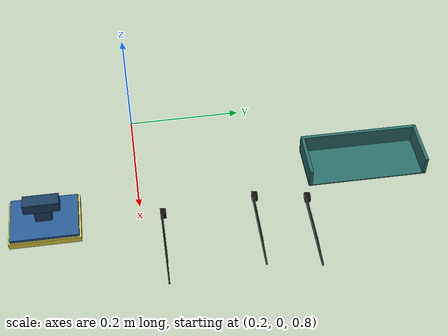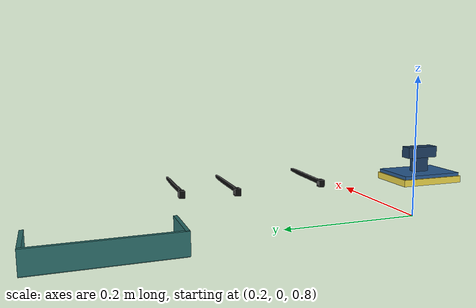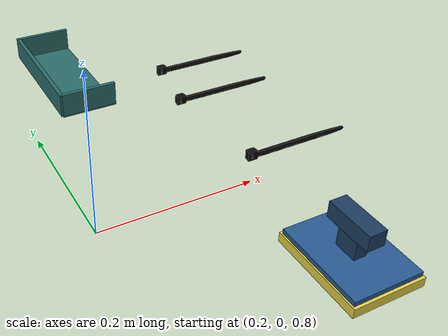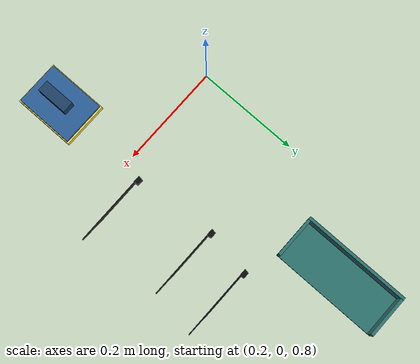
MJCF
<?xml version="1.0" encoding="utf-8"?>
<mujoco>
  <asset>
    <mesh name="cleanup_cable_tie" file="meshes/essentra_461182_cable_tie_150mm.stl" scale="0.001 0.001 0.001" />
    <material name="cleanup_foam" rgba="0.92 0.83 0.28 1" />
    <material name="cleanup_backing" rgba="0.16 0.36 0.58 1" />
    <material name="cleanup_handle" rgba="0.11 0.24 0.38 1" />
    <material name="cleanup_tie_material" rgba="0.04 0.04 0.04 1" />
    <material name="cleanup_tray_material" rgba="0.17 0.43 0.42 1" />
  </asset>
  <worldbody>
    <!-- The table top is z=0.800. The soft contact response approximates a sponge pad,
         but does not model its internal deformation. The rigid handle is grasped along X. -->
    <body name="cleanup_sponge" pos="0.415 -0.160 0.806">
      <freejoint name="fj_sponge" />
      <inertial pos="0 0 0.014" mass="0.090" diaginertia="0.00007 0.00010 0.00012" />
      <geom name="cleanup_sponge_pad" type="box" size="0.045 0.060 0.006" material="cleanup_foam" friction="1.3 0.03 0.001" solref="0.025 1" solimp="0.85 0.97 0.001" contype="1" conaffinity="1023" />
      <geom name="cleanup_sponge_backing" type="box" pos="0 0 0.009" size="0.043 0.057 0.003" material="cleanup_backing" contype="1" conaffinity="1023" />
      <geom name="cleanup_sponge_stem" type="box" pos="0 0 0.032" size="0.008 0.014 0.020" material="cleanup_handle" contype="1" conaffinity="1023" />
      <geom name="cleanup_sponge_handle" type="box" pos="0 0 0.048" size="0.011 0.030 0.010" material="cleanup_handle" friction="1.8 0.03 0.001" contype="1" conaffinity="1023" />
      <site name="sponge_grasp" pos="0 0 0.048" size="0.003" rgba="0 0 0 0" />
      <site name="sponge_contact" pos="0 0 -0.006" size="0.003" rgba="0 0 0 0" />
    </body>

    <!-- Three rigid 150 mm Essentra 461182 cable ties. -->
    <body name="cleanup_tie_0" pos="0.575000 0.035 0.807">
      <freejoint name="fj_tie_0" />
      <inertial pos="-0.075 0 0" mass="0.003" diaginertia="0.0000001 0.000006 0.000006" />
      <geom name="cleanup_tie_0_geom" type="mesh" mesh="cleanup_cable_tie" material="cleanup_tie_material" friction="0.65 0.005 0.0001" contype="1" conaffinity="1023" />
    </body>
    <body name="cleanup_tie_1" pos="0.560000 0.195 0.807">
      <freejoint name="fj_tie_1" />
      <inertial pos="-0.075 0 0" mass="0.003" diaginertia="0.0000001 0.000006 0.000006" />
      <geom name="cleanup_tie_1_geom" type="mesh" mesh="cleanup_cable_tie" material="cleanup_tie_material" friction="0.65 0.005 0.0001" contype="1" conaffinity="1023" />
    </body>
    <body name="cleanup_tie_2" pos="0.575000 0.285 0.807">
      <freejoint name="fj_tie_2" />
      <inertial pos="-0.075 0 0" mass="0.003" diaginertia="0.0000001 0.000006 0.000006" />
      <geom name="cleanup_tie_2_geom" type="mesh" mesh="cleanup_cable_tie" material="cleanup_tie_material" friction="0.65 0.005 0.0001" contype="1" conaffinity="1023" />
    </body>

    <!-- Fully outside the near table edge (X=0.360976); open toward +X. -->
    <body name="cleanup_tray" pos="0.315 0.420 0.753">
      <geom name="cleanup_tray_bottom" type="box" pos="0 0 0.001" size="0.043 0.110 0.001" material="cleanup_tray_material" friction="0.7 0.01 0.001" contype="1" conaffinity="1023" />
      <geom name="cleanup_tray_side_left" type="box" pos="0 -0.107 0.020" size="0.043 0.003 0.018" material="cleanup_tray_material" contype="1" conaffinity="1023" />
      <geom name="cleanup_tray_side_right" type="box" pos="0 0.107 0.020" size="0.043 0.003 0.018" material="cleanup_tray_material" contype="1" conaffinity="1023" />
      <geom name="cleanup_tray_back" type="box" pos="-0.043 0 0.020" size="0.003 0.110 0.018" material="cleanup_tray_material" contype="1" conaffinity="1023" />
    </body>
  </worldbody>
</mujoco>
